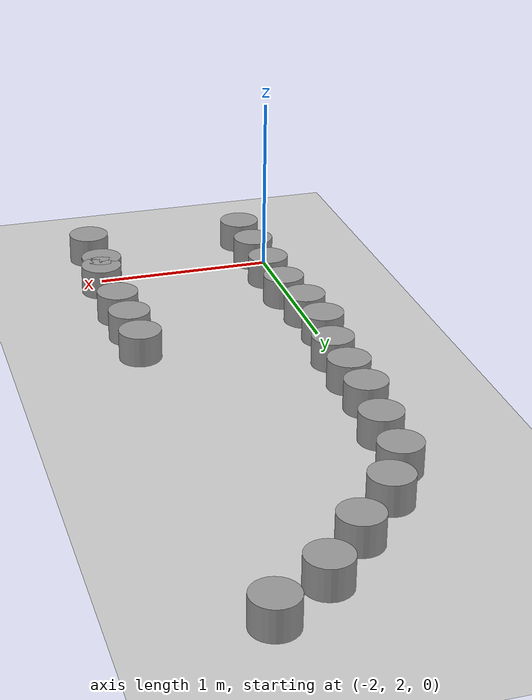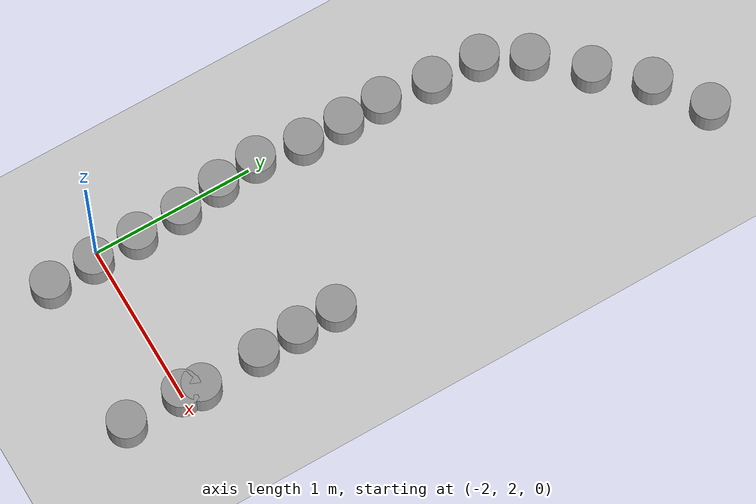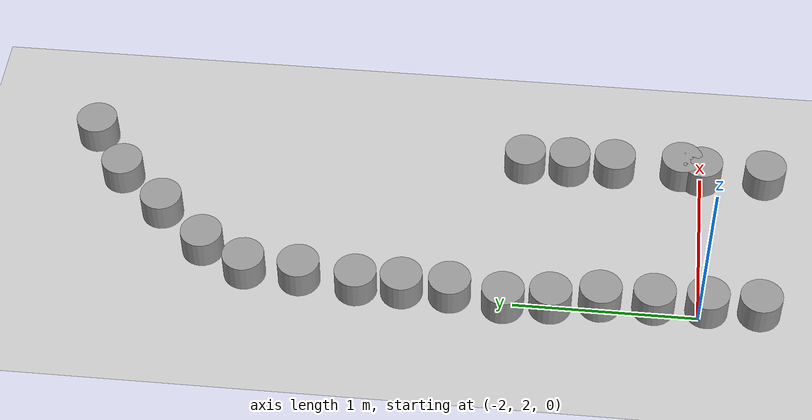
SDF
<sdf version="1.6">
 <world name="default">
  <model name="ground_plane">
   <static>1</static>
   <link name="link">
    <collision name="collision">
     <geometry><plane><normal>0 0 1</normal><size>100 100</size></plane></geometry>
     <surface>
      <contact><collide_bitmask>65535</collide_bitmask></contact>
      <friction><ode><mu>100</mu><mu2>50</mu2></ode></friction>
     </surface>
    </collision>
    <visual name="visual">
     <cast_shadows>0</cast_shadows>
     <geometry><plane><normal>0 0 1</normal><size>100 100</size></plane></geometry>
     <material>
      <script><uri>file://media/materials/scripts/gazebo.material</uri><name>Gazebo/Grey</name></script>
     </material>
    </visual>
   </link>
  </model>
  <model name="pillar">
   <link name="link_0">
    <inertial>
     <mass>0.0172437</mass>
     <inertia>
      <ixx>0.000207925</ixx>
      <ixy>0</ixy>
      <ixz>0</ixz>
      <iyy>0.000207925</iyy>
      <iyz>0</iyz>
      <izz>0.000114861</izz>
     </inertia>
    </inertial>
    <pose>2e-06 -0 0 0 -0 0</pose>
    <visual name="visual">
     <geometry><cylinder><radius>0.115422</radius><length>0.32362</length></cylinder></geometry>
     <material>
      <lighting>1</lighting>
      <script><uri>file://media/materials/scripts/gazebo.material</uri><name>Gazebo/Grey</name></script>
      <shader type="vertex"><normal_map>__default__</normal_map></shader>
     </material>
    </visual>
    <collision name="collision">
     <geometry><cylinder><radius>0.115422</radius><length>0.32362</length></cylinder></geometry>
     <surface>
      <friction>
       <ode><mu>1</mu><mu2>1</mu2><fdir1>0 0 0</fdir1><slip1>0</slip1><slip2>0</slip2></ode>
       <torsional>
        <coefficient>1</coefficient>
        <patch_radius>0</patch_radius>
        <surface_radius>0</surface_radius>
        <use_patch_radius>1</use_patch_radius>
        <ode><slip>0</slip></ode>
       </torsional>
      </friction>
      <bounce><restitution_coefficient>0</restitution_coefficient><threshold>1e+06</threshold></bounce>
      <contact>
       <collide_without_contact>0</collide_without_contact>
       <collide_without_contact_bitmask>1</collide_without_contact_bitmask>
       <collide_bitmask>1</collide_bitmask>
       <ode>
        <soft_cfm>0</soft_cfm>
        <soft_erp>0.2</soft_erp>
        <kp>1e+13</kp>
        <kd>1</kd>
        <max_vel>0.01</max_vel>
        <min_depth>0</min_depth>
       </ode>
       <bullet>
        <split_impulse>1</split_impulse>
        <split_impulse_penetration_threshold>-0.01</split_impulse_penetration_threshold>
        <soft_cfm>0</soft_cfm>
        <soft_erp>0.2</soft_erp>
        <kp>1e+13</kp>
        <kd>1</kd>
       </bullet>
      </contact>
     </surface>
    </collision>
   </link>
   <static>1</static>
   <pose>-2.01154 3.05582 0 0 -0 0</pose>
  </model>
  <model name="pillar_clone">
   <link name="link_0">
    <inertial>
     <mass>0.0172437</mass>
     <inertia>
      <ixx>0.000207925</ixx>
      <ixy>0</ixy>
      <ixz>0</ixz>
      <iyy>0.000207925</iyy>
      <iyz>0</iyz>
      <izz>0.000114861</izz>
     </inertia>
    </inertial>
    <pose>2e-06 -0 0 0 -0 0</pose>
    <visual name="visual">
     <geometry><cylinder><radius>0.115422</radius><length>0.32362</length></cylinder></geometry>
     <material>
      <lighting>1</lighting>
      <script><uri>file://media/materials/scripts/gazebo.material</uri><name>Gazebo/Grey</name></script>
      <shader type="vertex"><normal_map>__default__</normal_map></shader>
     </material>
    </visual>
    <collision name="collision">
     <geometry><cylinder><radius>0.115422</radius><length>0.32362</length></cylinder></geometry>
     <surface>
      <friction>
       <ode><mu>1</mu><mu2>1</mu2><fdir1>0 0 0</fdir1><slip1>0</slip1><slip2>0</slip2></ode>
       <torsional>
        <coefficient>1</coefficient>
        <patch_radius>0</patch_radius>
        <surface_radius>0</surface_radius>
        <use_patch_radius>1</use_patch_radius>
        <ode><slip>0</slip></ode>
       </torsional>
      </friction>
      <bounce><restitution_coefficient>0</restitution_coefficient><threshold>1e+06</threshold></bounce>
      <contact>
       <collide_without_contact>0</collide_without_contact>
       <collide_without_contact_bitmask>1</collide_without_contact_bitmask>
       <collide_bitmask>1</collide_bitmask>
       <ode>
        <soft_cfm>0</soft_cfm>
        <soft_erp>0.2</soft_erp>
        <kp>1e+13</kp>
        <kd>1</kd>
        <max_vel>0.01</max_vel>
        <min_depth>0</min_depth>
       </ode>
       <bullet>
        <split_impulse>1</split_impulse>
        <split_impulse_penetration_threshold>-0.01</split_impulse_penetration_threshold>
        <soft_cfm>0</soft_cfm>
        <soft_erp>0.2</soft_erp>
        <kp>1e+13</kp>
        <kd>1</kd>
       </bullet>
      </contact>
     </surface>
    </collision>
   </link>
   <static>1</static>
   <pose>-1.99112 2.80091 0 0 -0 0</pose>
  </model>
  <model name="pillar_clone_0">
   <link name="link_0">
    <inertial>
     <mass>0.0172437</mass>
     <inertia>
      <ixx>0.000207925</ixx>
      <ixy>0</ixy>
      <ixz>0</ixz>
      <iyy>0.000207925</iyy>
      <iyz>0</iyz>
      <izz>0.000114861</izz>
     </inertia>
    </inertial>
    <pose>2e-06 -0 0 0 -0 0</pose>
    <visual name="visual">
     <geometry><cylinder><radius>0.115422</radius><length>0.32362</length></cylinder></geometry>
     <material>
      <lighting>1</lighting>
      <script><uri>file://media/materials/scripts/gazebo.material</uri><name>Gazebo/Grey</name></script>
      <shader type="vertex"><normal_map>__default__</normal_map></shader>
     </material>
    </visual>
    <collision name="collision">
     <geometry><cylinder><radius>0.115422</radius><length>0.32362</length></cylinder></geometry>
     <surface>
      <friction>
       <ode><mu>1</mu><mu2>1</mu2><fdir1>0 0 0</fdir1><slip1>0</slip1><slip2>0</slip2></ode>
       <torsional>
        <coefficient>1</coefficient>
        <patch_radius>0</patch_radius>
        <surface_radius>0</surface_radius>
        <use_patch_radius>1</use_patch_radius>
        <ode><slip>0</slip></ode>
       </torsional>
      </friction>
      <bounce><restitution_coefficient>0</restitution_coefficient><threshold>1e+06</threshold></bounce>
      <contact>
       <collide_without_contact>0</collide_without_contact>
       <collide_without_contact_bitmask>1</collide_without_contact_bitmask>
       <collide_bitmask>1</collide_bitmask>
       <ode>
        <soft_cfm>0</soft_cfm>
        <soft_erp>0.2</soft_erp>
        <kp>1e+13</kp>
        <kd>1</kd>
        <max_vel>0.01</max_vel>
        <min_depth>0</min_depth>
       </ode>
       <bullet>
        <split_impulse>1</split_impulse>
        <split_impulse_penetration_threshold>-0.01</split_impulse_penetration_threshold>
        <soft_cfm>0</soft_cfm>
        <soft_erp>0.2</soft_erp>
        <kp>1e+13</kp>
        <kd>1</kd>
       </bullet>
      </contact>
     </surface>
    </collision>
   </link>
   <static>1</static>
   <pose>-1.95249 2.53371 0 0 -0 0</pose>
  </model>
  <model name="pillar_clone_1">
   <link name="link_0">
    <inertial>
     <mass>0.0172437</mass>
     <inertia>
      <ixx>0.000207925</ixx>
      <ixy>0</ixy>
      <ixz>0</ixz>
      <iyy>0.000207925</iyy>
      <iyz>0</iyz>
      <izz>0.000114861</izz>
     </inertia>
    </inertial>
    <pose>2e-06 -0 0 0 -0 0</pose>
    <visual name="visual">
     <geometry><cylinder><radius>0.115422</radius><length>0.32362</length></cylinder></geometry>
     <material>
      <lighting>1</lighting>
      <script><uri>file://media/materials/scripts/gazebo.material</uri><name>Gazebo/Grey</name></script>
      <shader type="vertex"><normal_map>__default__</normal_map></shader>
     </material>
    </visual>
    <collision name="collision">
     <geometry><cylinder><radius>0.115422</radius><length>0.32362</length></cylinder></geometry>
     <surface>
      <friction>
       <ode><mu>1</mu><mu2>1</mu2><fdir1>0 0 0</fdir1><slip1>0</slip1><slip2>0</slip2></ode>
       <torsional>
        <coefficient>1</coefficient>
        <patch_radius>0</patch_radius>
        <surface_radius>0</surface_radius>
        <use_patch_radius>1</use_patch_radius>
        <ode><slip>0</slip></ode>
       </torsional>
      </friction>
      <bounce><restitution_coefficient>0</restitution_coefficient><threshold>1e+06</threshold></bounce>
      <contact>
       <collide_without_contact>0</collide_without_contact>
       <collide_without_contact_bitmask>1</collide_without_contact_bitmask>
       <collide_bitmask>1</collide_bitmask>
       <ode>
        <soft_cfm>0</soft_cfm>
        <soft_erp>0.2</soft_erp>
        <kp>1e+13</kp>
        <kd>1</kd>
        <max_vel>0.01</max_vel>
        <min_depth>0</min_depth>
       </ode>
       <bullet>
        <split_impulse>1</split_impulse>
        <split_impulse_penetration_threshold>-0.01</split_impulse_penetration_threshold>
        <soft_cfm>0</soft_cfm>
        <soft_erp>0.2</soft_erp>
        <kp>1e+13</kp>
        <kd>1</kd>
       </bullet>
      </contact>
     </surface>
    </collision>
   </link>
   <static>1</static>
   <pose>-1.9471 2.24459 0 0 -0 0</pose>
  </model>
  <model name="pillar_clone_2">
   <link name="link_0">
    <inertial>
     <mass>0.0172437</mass>
     <inertia>
      <ixx>0.000207925</ixx>
      <ixy>0</ixy>
      <ixz>0</ixz>
      <iyy>0.000207925</iyy>
      <iyz>0</iyz>
      <izz>0.000114861</izz>
     </inertia>
    </inertial>
    <pose>2e-06 -0 0 0 -0 0</pose>
    <visual name="visual">
     <geometry><cylinder><radius>0.115422</radius><length>0.32362</length></cylinder></geometry>
     <material>
      <lighting>1</lighting>
      <script><uri>file://media/materials/scripts/gazebo.material</uri><name>Gazebo/Grey</name></script>
      <shader type="vertex"><normal_map>__default__</normal_map></shader>
     </material>
    </visual>
    <collision name="collision">
     <geometry><cylinder><radius>0.115422</radius><length>0.32362</length></cylinder></geometry>
     <surface>
      <friction>
       <ode><mu>1</mu><mu2>1</mu2><fdir1>0 0 0</fdir1><slip1>0</slip1><slip2>0</slip2></ode>
       <torsional>
        <coefficient>1</coefficient>
        <patch_radius>0</patch_radius>
        <surface_radius>0</surface_radius>
        <use_patch_radius>1</use_patch_radius>
        <ode><slip>0</slip></ode>
       </torsional>
      </friction>
      <bounce><restitution_coefficient>0</restitution_coefficient><threshold>1e+06</threshold></bounce>
      <contact>
       <collide_without_contact>0</collide_without_contact>
       <collide_without_contact_bitmask>1</collide_without_contact_bitmask>
       <collide_bitmask>1</collide_bitmask>
       <ode>
        <soft_cfm>0</soft_cfm>
        <soft_erp>0.2</soft_erp>
        <kp>1e+13</kp>
        <kd>1</kd>
        <max_vel>0.01</max_vel>
        <min_depth>0</min_depth>
       </ode>
       <bullet>
        <split_impulse>1</split_impulse>
        <split_impulse_penetration_threshold>-0.01</split_impulse_penetration_threshold>
        <soft_cfm>0</soft_cfm>
        <soft_erp>0.2</soft_erp>
        <kp>1e+13</kp>
        <kd>1</kd>
       </bullet>
      </contact>
     </surface>
    </collision>
   </link>
   <static>1</static>
   <pose>-1.94177 1.95842 0 0 -0 0</pose>
  </model>
  <model name="pillar_clone_3">
   <link name="link_0">
    <inertial>
     <mass>0.0172437</mass>
     <inertia>
      <ixx>0.000207925</ixx>
      <ixy>0</ixy>
      <ixz>0</ixz>
      <iyy>0.000207925</iyy>
      <iyz>0</iyz>
      <izz>0.000114861</izz>
     </inertia>
    </inertial>
    <pose>2e-06 -0 0 0 -0 0</pose>
    <visual name="visual">
     <geometry><cylinder><radius>0.115422</radius><length>0.32362</length></cylinder></geometry>
     <material>
      <lighting>1</lighting>
      <script><uri>file://media/materials/scripts/gazebo.material</uri><name>Gazebo/Grey</name></script>
      <shader type="vertex"><normal_map>__default__</normal_map></shader>
     </material>
    </visual>
    <collision name="collision">
     <geometry><cylinder><radius>0.115422</radius><length>0.32362</length></cylinder></geometry>
     <surface>
      <friction>
       <ode><mu>1</mu><mu2>1</mu2><fdir1>0 0 0</fdir1><slip1>0</slip1><slip2>0</slip2></ode>
       <torsional>
        <coefficient>1</coefficient>
        <patch_radius>0</patch_radius>
        <surface_radius>0</surface_radius>
        <use_patch_radius>1</use_patch_radius>
        <ode><slip>0</slip></ode>
       </torsional>
      </friction>
      <bounce><restitution_coefficient>0</restitution_coefficient><threshold>1e+06</threshold></bounce>
      <contact>
       <collide_without_contact>0</collide_without_contact>
       <collide_without_contact_bitmask>1</collide_without_contact_bitmask>
       <collide_bitmask>1</collide_bitmask>
       <ode>
        <soft_cfm>0</soft_cfm>
        <soft_erp>0.2</soft_erp>
        <kp>1e+13</kp>
        <kd>1</kd>
        <max_vel>0.01</max_vel>
        <min_depth>0</min_depth>
       </ode>
       <bullet>
        <split_impulse>1</split_impulse>
        <split_impulse_penetration_threshold>-0.01</split_impulse_penetration_threshold>
        <soft_cfm>0</soft_cfm>
        <soft_erp>0.2</soft_erp>
        <kp>1e+13</kp>
        <kd>1</kd>
       </bullet>
      </contact>
     </surface>
    </collision>
   </link>
   <static>1</static>
   <pose>-1.93622 1.67516 0 0 -0 0</pose>
  </model>
  <model name="pillar_clone_13">
   <link name="link_0">
    <inertial>
     <mass>0.0172437</mass>
     <inertia>
      <ixx>0.000207925</ixx>
      <ixy>0</ixy>
      <ixz>0</ixz>
      <iyy>0.000207925</iyy>
      <iyz>0</iyz>
      <izz>0.000114861</izz>
     </inertia>
    </inertial>
    <pose>2e-06 -0 0 0 -0 0</pose>
    <visual name="visual">
     <geometry><cylinder><radius>0.115422</radius><length>0.32362</length></cylinder></geometry>
     <material>
      <lighting>1</lighting>
      <script><uri>file://media/materials/scripts/gazebo.material</uri><name>Gazebo/Grey</name></script>
      <shader type="vertex"><normal_map>__default__</normal_map></shader>
     </material>
    </visual>
    <collision name="collision">
     <geometry><cylinder><radius>0.115422</radius><length>0.32362</length></cylinder></geometry>
     <surface>
      <friction>
       <ode><mu>1</mu><mu2>1</mu2><fdir1>0 0 0</fdir1><slip1>0</slip1><slip2>0</slip2></ode>
       <torsional>
        <coefficient>1</coefficient>
        <patch_radius>0</patch_radius>
        <surface_radius>0</surface_radius>
        <use_patch_radius>1</use_patch_radius>
        <ode><slip>0</slip></ode>
       </torsional>
      </friction>
      <bounce><restitution_coefficient>0</restitution_coefficient><threshold>1e+06</threshold></bounce>
      <contact>
       <collide_without_contact>0</collide_without_contact>
       <collide_without_contact_bitmask>1</collide_without_contact_bitmask>
       <collide_bitmask>1</collide_bitmask>
       <ode>
        <soft_cfm>0</soft_cfm>
        <soft_erp>0.2</soft_erp>
        <kp>1e+13</kp>
        <kd>1</kd>
        <max_vel>0.01</max_vel>
        <min_depth>0</min_depth>
       </ode>
       <bullet>
        <split_impulse>1</split_impulse>
        <split_impulse_penetration_threshold>-0.01</split_impulse_penetration_threshold>
        <soft_cfm>0</soft_cfm>
        <soft_erp>0.2</soft_erp>
        <kp>1e+13</kp>
        <kd>1</kd>
       </bullet>
      </contact>
     </surface>
    </collision>
   </link>
   <static>1</static>
   <pose>-1.96524 3.85851 0 0 -0 0</pose>
  </model>
  <model name="pillar_clone_14">
   <link name="link_0">
    <inertial>
     <mass>0.0172437</mass>
     <inertia>
      <ixx>0.000207925</ixx>
      <ixy>0</ixy>
      <ixz>0</ixz>
      <iyy>0.000207925</iyy>
      <iyz>0</iyz>
      <izz>0.000114861</izz>
     </inertia>
    </inertial>
    <pose>2e-06 -0 0 0 -0 0</pose>
    <visual name="visual">
     <geometry><cylinder><radius>0.115422</radius><length>0.32362</length></cylinder></geometry>
     <material>
      <lighting>1</lighting>
      <script><uri>file://media/materials/scripts/gazebo.material</uri><name>Gazebo/Grey</name></script>
      <shader type="vertex"><normal_map>__default__</normal_map></shader>
     </material>
    </visual>
    <collision name="collision">
     <geometry><cylinder><radius>0.115422</radius><length>0.32362</length></cylinder></geometry>
     <surface>
      <friction>
       <ode><mu>1</mu><mu2>1</mu2><fdir1>0 0 0</fdir1><slip1>0</slip1><slip2>0</slip2></ode>
       <torsional>
        <coefficient>1</coefficient>
        <patch_radius>0</patch_radius>
        <surface_radius>0</surface_radius>
        <use_patch_radius>1</use_patch_radius>
        <ode><slip>0</slip></ode>
       </torsional>
      </friction>
      <bounce><restitution_coefficient>0</restitution_coefficient><threshold>1e+06</threshold></bounce>
      <contact>
       <collide_without_contact>0</collide_without_contact>
       <collide_without_contact_bitmask>1</collide_without_contact_bitmask>
       <collide_bitmask>1</collide_bitmask>
       <ode>
        <soft_cfm>0</soft_cfm>
        <soft_erp>0.2</soft_erp>
        <kp>1e+13</kp>
        <kd>1</kd>
        <max_vel>0.01</max_vel>
        <min_depth>0</min_depth>
       </ode>
       <bullet>
        <split_impulse>1</split_impulse>
        <split_impulse_penetration_threshold>-0.01</split_impulse_penetration_threshold>
        <soft_cfm>0</soft_cfm>
        <soft_erp>0.2</soft_erp>
        <kp>1e+13</kp>
        <kd>1</kd>
       </bullet>
      </contact>
     </surface>
    </collision>
   </link>
   <static>1</static>
   <pose>-1.96342 3.6093 0 0 -0 0</pose>
  </model>
  <model name="pillar_clone_15">
   <link name="link_0">
    <inertial>
     <mass>0.0172437</mass>
     <inertia>
      <ixx>0.000207925</ixx>
      <ixy>0</ixy>
      <ixz>0</ixz>
      <iyy>0.000207925</iyy>
      <iyz>0</iyz>
      <izz>0.000114861</izz>
     </inertia>
    </inertial>
    <pose>2e-06 -0 0 0 -0 0</pose>
    <visual name="visual">
     <geometry><cylinder><radius>0.115422</radius><length>0.32362</length></cylinder></geometry>
     <material>
      <lighting>1</lighting>
      <script><uri>file://media/materials/scripts/gazebo.material</uri><name>Gazebo/Grey</name></script>
      <shader type="vertex"><normal_map>__default__</normal_map></shader>
     </material>
    </visual>
    <collision name="collision">
     <geometry><cylinder><radius>0.115422</radius><length>0.32362</length></cylinder></geometry>
     <surface>
      <friction>
       <ode><mu>1</mu><mu2>1</mu2><fdir1>0 0 0</fdir1><slip1>0</slip1><slip2>0</slip2></ode>
       <torsional>
        <coefficient>1</coefficient>
        <patch_radius>0</patch_radius>
        <surface_radius>0</surface_radius>
        <use_patch_radius>1</use_patch_radius>
        <ode><slip>0</slip></ode>
       </torsional>
      </friction>
      <bounce><restitution_coefficient>0</restitution_coefficient><threshold>1e+06</threshold></bounce>
      <contact>
       <collide_without_contact>0</collide_without_contact>
       <collide_without_contact_bitmask>1</collide_without_contact_bitmask>
       <collide_bitmask>1</collide_bitmask>
       <ode>
        <soft_cfm>0</soft_cfm>
        <soft_erp>0.2</soft_erp>
        <kp>1e+13</kp>
        <kd>1</kd>
        <max_vel>0.01</max_vel>
        <min_depth>0</min_depth>
       </ode>
       <bullet>
        <split_impulse>1</split_impulse>
        <split_impulse_penetration_threshold>-0.01</split_impulse_penetration_threshold>
        <soft_cfm>0</soft_cfm>
        <soft_erp>0.2</soft_erp>
        <kp>1e+13</kp>
        <kd>1</kd>
       </bullet>
      </contact>
     </surface>
    </collision>
   </link>
   <static>1</static>
   <pose>-1.96782 3.34684 0 0 -0 0</pose>
  </model>
  <model name="pillar_clone_36_clone_13">
   <link name="link_0">
    <inertial>
     <mass>0.0172437</mass>
     <inertia>
      <ixx>0.000207925</ixx>
      <ixy>0</ixy>
      <ixz>0</ixz>
      <iyy>0.000207925</iyy>
      <iyz>0</iyz>
      <izz>0.000114861</izz>
     </inertia>
    </inertial>
    <pose>2e-06 -0 0 0 -0 0</pose>
    <visual name="visual">
     <geometry><cylinder><radius>0.115422</radius><length>0.32362</length></cylinder></geometry>
     <material>
      <lighting>1</lighting>
      <script><uri>file://media/materials/scripts/gazebo.material</uri><name>Gazebo/Grey</name></script>
      <shader type="vertex"><normal_map>__default__</normal_map></shader>
     </material>
    </visual>
    <collision name="collision">
     <geometry><cylinder><radius>0.115422</radius><length>0.32362</length></cylinder></geometry>
     <surface>
      <friction>
       <ode><mu>1</mu><mu2>1</mu2><fdir1>0 0 0</fdir1><slip1>0</slip1><slip2>0</slip2></ode>
       <torsional>
        <coefficient>1</coefficient>
        <patch_radius>0</patch_radius>
        <surface_radius>0</surface_radius>
        <use_patch_radius>1</use_patch_radius>
        <ode><slip>0</slip></ode>
       </torsional>
      </friction>
      <bounce><restitution_coefficient>0</restitution_coefficient><threshold>1e+06</threshold></bounce>
      <contact>
       <collide_without_contact>0</collide_without_contact>
       <collide_without_contact_bitmask>1</collide_without_contact_bitmask>
       <collide_bitmask>1</collide_bitmask>
       <ode>
        <soft_cfm>0</soft_cfm>
        <soft_erp>0.2</soft_erp>
        <kp>1e+13</kp>
        <kd>1</kd>
        <max_vel>0.01</max_vel>
        <min_depth>0</min_depth>
       </ode>
       <bullet>
        <split_impulse>1</split_impulse>
        <split_impulse_penetration_threshold>-0.01</split_impulse_penetration_threshold>
        <soft_cfm>0</soft_cfm>
        <soft_erp>0.2</soft_erp>
        <kp>1e+13</kp>
        <kd>1</kd>
       </bullet>
      </contact>
     </surface>
    </collision>
   </link>
   <static>1</static>
   <pose>-1.92624 4.17436 0 0 -0 0</pose>
  </model>
  <model name="pillar_clone_36_clone_14">
   <link name="link_0">
    <inertial>
     <mass>0.0172437</mass>
     <inertia>
      <ixx>0.000207925</ixx>
      <ixy>0</ixy>
      <ixz>0</ixz>
      <iyy>0.000207925</iyy>
      <iyz>0</iyz>
      <izz>0.000114861</izz>
     </inertia>
    </inertial>
    <pose>2e-06 -0 0 0 -0 0</pose>
    <visual name="visual">
     <geometry><cylinder><radius>0.115422</radius><length>0.32362</length></cylinder></geometry>
     <material>
      <lighting>1</lighting>
      <script><uri>file://media/materials/scripts/gazebo.material</uri><name>Gazebo/Grey</name></script>
      <shader type="vertex"><normal_map>__default__</normal_map></shader>
     </material>
    </visual>
    <collision name="collision">
     <geometry><cylinder><radius>0.115422</radius><length>0.32362</length></cylinder></geometry>
     <surface>
      <friction>
       <ode><mu>1</mu><mu2>1</mu2><fdir1>0 0 0</fdir1><slip1>0</slip1><slip2>0</slip2></ode>
       <torsional>
        <coefficient>1</coefficient>
        <patch_radius>0</patch_radius>
        <surface_radius>0</surface_radius>
        <use_patch_radius>1</use_patch_radius>
        <ode><slip>0</slip></ode>
       </torsional>
      </friction>
      <bounce><restitution_coefficient>0</restitution_coefficient><threshold>1e+06</threshold></bounce>
      <contact>
       <collide_without_contact>0</collide_without_contact>
       <collide_without_contact_bitmask>1</collide_without_contact_bitmask>
       <collide_bitmask>1</collide_bitmask>
       <ode>
        <soft_cfm>0</soft_cfm>
        <soft_erp>0.2</soft_erp>
        <kp>1e+13</kp>
        <kd>1</kd>
        <max_vel>0.01</max_vel>
        <min_depth>0</min_depth>
       </ode>
       <bullet>
        <split_impulse>1</split_impulse>
        <split_impulse_penetration_threshold>-0.01</split_impulse_penetration_threshold>
        <soft_cfm>0</soft_cfm>
        <soft_erp>0.2</soft_erp>
        <kp>1e+13</kp>
        <kd>1</kd>
       </bullet>
      </contact>
     </surface>
    </collision>
   </link>
   <static>1</static>
   <pose>-1.90785 4.4788 0 0 -0 0</pose>
  </model>
  <model name="pillar_clone_36_clone_15">
   <link name="link_0">
    <inertial>
     <mass>0.0172437</mass>
     <inertia>
      <ixx>0.000207925</ixx>
      <ixy>0</ixy>
      <ixz>0</ixz>
      <iyy>0.000207925</iyy>
      <iyz>0</iyz>
      <izz>0.000114861</izz>
     </inertia>
    </inertial>
    <pose>2e-06 -0 0 0 -0 0</pose>
    <visual name="visual">
     <geometry><cylinder><radius>0.115422</radius><length>0.32362</length></cylinder></geometry>
     <material>
      <lighting>1</lighting>
      <script><uri>file://media/materials/scripts/gazebo.material</uri><name>Gazebo/Grey</name></script>
      <shader type="vertex"><normal_map>__default__</normal_map></shader>
     </material>
    </visual>
    <collision name="collision">
     <geometry><cylinder><radius>0.115422</radius><length>0.32362</length></cylinder></geometry>
     <surface>
      <friction>
       <ode><mu>1</mu><mu2>1</mu2><fdir1>0 0 0</fdir1><slip1>0</slip1><slip2>0</slip2></ode>
       <torsional>
        <coefficient>1</coefficient>
        <patch_radius>0</patch_radius>
        <surface_radius>0</surface_radius>
        <use_patch_radius>1</use_patch_radius>
        <ode><slip>0</slip></ode>
       </torsional>
      </friction>
      <bounce><restitution_coefficient>0</restitution_coefficient><threshold>1e+06</threshold></bounce>
      <contact>
       <collide_without_contact>0</collide_without_contact>
       <collide_without_contact_bitmask>1</collide_without_contact_bitmask>
       <collide_bitmask>1</collide_bitmask>
       <ode>
        <soft_cfm>0</soft_cfm>
        <soft_erp>0.2</soft_erp>
        <kp>1e+13</kp>
        <kd>1</kd>
        <max_vel>0.01</max_vel>
        <min_depth>0</min_depth>
       </ode>
       <bullet>
        <split_impulse>1</split_impulse>
        <split_impulse_penetration_threshold>-0.01</split_impulse_penetration_threshold>
        <soft_cfm>0</soft_cfm>
        <soft_erp>0.2</soft_erp>
        <kp>1e+13</kp>
        <kd>1</kd>
       </bullet>
      </contact>
     </surface>
    </collision>
   </link>
   <static>1</static>
   <pose>-1.52119 5 0 0 -0 0</pose>
  </model>
  <model name="pillar_clone_36_clone_16">
   <link name="link_0">
    <inertial>
     <mass>0.0172437</mass>
     <inertia>
      <ixx>0.000207925</ixx>
      <ixy>0</ixy>
      <ixz>0</ixz>
      <iyy>0.000207925</iyy>
      <iyz>0</iyz>
      <izz>0.000114861</izz>
     </inertia>
    </inertial>
    <pose>2e-06 -0 0 0 -0 0</pose>
    <visual name="visual">
     <geometry><cylinder><radius>0.115422</radius><length>0.32362</length></cylinder></geometry>
     <material>
      <lighting>1</lighting>
      <script><uri>file://media/materials/scripts/gazebo.material</uri><name>Gazebo/Grey</name></script>
      <shader type="vertex"><normal_map>__default__</normal_map></shader>
     </material>
    </visual>
    <collision name="collision">
     <geometry><cylinder><radius>0.115422</radius><length>0.32362</length></cylinder></geometry>
     <surface>
      <friction>
       <ode><mu>1</mu><mu2>1</mu2><fdir1>0 0 0</fdir1><slip1>0</slip1><slip2>0</slip2></ode>
       <torsional>
        <coefficient>1</coefficient>
        <patch_radius>0</patch_radius>
        <surface_radius>0</surface_radius>
        <use_patch_radius>1</use_patch_radius>
        <ode><slip>0</slip></ode>
       </torsional>
      </friction>
      <bounce><restitution_coefficient>0</restitution_coefficient><threshold>1e+06</threshold></bounce>
      <contact>
       <collide_without_contact>0</collide_without_contact>
       <collide_without_contact_bitmask>1</collide_without_contact_bitmask>
       <collide_bitmask>1</collide_bitmask>
       <ode>
        <soft_cfm>0</soft_cfm>
        <soft_erp>0.2</soft_erp>
        <kp>1e+13</kp>
        <kd>1</kd>
        <max_vel>0.01</max_vel>
        <min_depth>0</min_depth>
       </ode>
       <bullet>
        <split_impulse>1</split_impulse>
        <split_impulse_penetration_threshold>-0.01</split_impulse_penetration_threshold>
        <soft_cfm>0</soft_cfm>
        <soft_erp>0.2</soft_erp>
        <kp>1e+13</kp>
        <kd>1</kd>
       </bullet>
      </contact>
     </surface>
    </collision>
   </link>
   <static>1</static>
   <pose>-1.28242 5.26483 0 0 -0 0</pose>
  </model>
  <model name="pillar_clone_36_clone_17">
   <link name="link_0">
    <inertial>
     <mass>0.0172437</mass>
     <inertia>
      <ixx>0.000207925</ixx>
      <ixy>0</ixy>
      <ixz>0</ixz>
      <iyy>0.000207925</iyy>
      <iyz>0</iyz>
      <izz>0.000114861</izz>
     </inertia>
    </inertial>
    <pose>2e-06 -0 0 0 -0 0</pose>
    <visual name="visual">
     <geometry><cylinder><radius>0.115422</radius><length>0.32362</length></cylinder></geometry>
     <material>
      <lighting>1</lighting>
      <script><uri>file://media/materials/scripts/gazebo.material</uri><name>Gazebo/Grey</name></script>
      <shader type="vertex"><normal_map>__default__</normal_map></shader>
     </material>
    </visual>
    <collision name="collision">
     <geometry><cylinder><radius>0.115422</radius><length>0.32362</length></cylinder></geometry>
     <surface>
      <friction>
       <ode><mu>1</mu><mu2>1</mu2><fdir1>0 0 0</fdir1><slip1>0</slip1><slip2>0</slip2></ode>
       <torsional>
        <coefficient>1</coefficient>
        <patch_radius>0</patch_radius>
        <surface_radius>0</surface_radius>
        <use_patch_radius>1</use_patch_radius>
        <ode><slip>0</slip></ode>
       </torsional>
      </friction>
      <bounce><restitution_coefficient>0</restitution_coefficient><threshold>1e+06</threshold></bounce>
      <contact>
       <collide_without_contact>0</collide_without_contact>
       <collide_without_contact_bitmask>1</collide_without_contact_bitmask>
       <collide_bitmask>1</collide_bitmask>
       <ode>
        <soft_cfm>0</soft_cfm>
        <soft_erp>0.2</soft_erp>
        <kp>1e+13</kp>
        <kd>1</kd>
        <max_vel>0.01</max_vel>
        <min_depth>0</min_depth>
       </ode>
       <bullet>
        <split_impulse>1</split_impulse>
        <split_impulse_penetration_threshold>-0.01</split_impulse_penetration_threshold>
        <soft_cfm>0</soft_cfm>
        <soft_erp>0.2</soft_erp>
        <kp>1e+13</kp>
        <kd>1</kd>
       </bullet>
      </contact>
     </surface>
    </collision>
   </link>
   <static>1</static>
   <pose>-1.76495 4.73224 0 0 -0 0</pose>
  </model>
  <model name="pillar_clone_36_clone_21">
   <link name="link_0">
    <inertial>
     <mass>0.0172437</mass>
     <inertia>
      <ixx>0.000207925</ixx>
      <ixy>0</ixy>
      <ixz>0</ixz>
      <iyy>0.000207925</iyy>
      <iyz>0</iyz>
      <izz>0.000114861</izz>
     </inertia>
    </inertial>
    <pose>2e-06 -0 0 0 -0 0</pose>
    <visual name="visual">
     <geometry><cylinder><radius>0.115422</radius><length>0.32362</length></cylinder></geometry>
     <material>
      <lighting>1</lighting>
      <script><uri>file://media/materials/scripts/gazebo.material</uri><name>Gazebo/Grey</name></script>
      <shader type="vertex"><normal_map>__default__</normal_map></shader>
     </material>
    </visual>
    <collision name="collision">
     <geometry><cylinder><radius>0.115422</radius><length>0.32362</length></cylinder></geometry>
     <surface>
      <friction>
       <ode><mu>1</mu><mu2>1</mu2><fdir1>0 0 0</fdir1><slip1>0</slip1><slip2>0</slip2></ode>
       <torsional>
        <coefficient>1</coefficient>
        <patch_radius>0</patch_radius>
        <surface_radius>0</surface_radius>
        <use_patch_radius>1</use_patch_radius>
        <ode><slip>0</slip></ode>
       </torsional>
      </friction>
      <bounce><restitution_coefficient>0</restitution_coefficient><threshold>1e+06</threshold></bounce>
      <contact>
       <collide_without_contact>0</collide_without_contact>
       <collide_without_contact_bitmask>1</collide_without_contact_bitmask>
       <collide_bitmask>1</collide_bitmask>
       <ode>
        <soft_cfm>0</soft_cfm>
        <soft_erp>0.2</soft_erp>
        <kp>1e+13</kp>
        <kd>1</kd>
        <max_vel>0.01</max_vel>
        <min_depth>0</min_depth>
       </ode>
       <bullet>
        <split_impulse>1</split_impulse>
        <split_impulse_penetration_threshold>-0.01</split_impulse_penetration_threshold>
        <soft_cfm>0</soft_cfm>
        <soft_erp>0.2</soft_erp>
        <kp>1e+13</kp>
        <kd>1</kd>
       </bullet>
      </contact>
     </surface>
    </collision>
   </link>
   <static>1</static>
   <pose>-0.981742 5.46708 0 0 -0 0</pose>
  </model>
  <model name="pillar_clone_36_clone_53">
   <link name="link_0">
    <inertial>
     <mass>0.0172437</mass>
     <inertia>
      <ixx>0.000207925</ixx>
      <ixy>0</ixy>
      <ixz>0</ixz>
      <iyy>0.000207925</iyy>
      <iyz>0</iyz>
      <izz>0.000114861</izz>
     </inertia>
    </inertial>
    <pose>2e-06 -0 0 0 -0 0</pose>
    <visual name="visual">
     <geometry><cylinder><radius>0.115422</radius><length>0.32362</length></cylinder></geometry>
     <material>
      <lighting>1</lighting>
      <script><uri>file://media/materials/scripts/gazebo.material</uri><name>Gazebo/Grey</name></script>
      <shader type="vertex"><normal_map>__default__</normal_map></shader>
     </material>
    </visual>
    <collision name="collision">
     <geometry><cylinder><radius>0.115422</radius><length>0.32362</length></cylinder></geometry>
     <surface>
      <friction>
       <ode><mu>1</mu><mu2>1</mu2><fdir1>0 0 0</fdir1><slip1>0</slip1><slip2>0</slip2></ode>
       <torsional>
        <coefficient>1</coefficient>
        <patch_radius>0</patch_radius>
        <surface_radius>0</surface_radius>
        <use_patch_radius>1</use_patch_radius>
        <ode><slip>0</slip></ode>
       </torsional>
      </friction>
      <bounce><restitution_coefficient>0</restitution_coefficient><threshold>1e+06</threshold></bounce>
      <contact>
       <collide_without_contact>0</collide_without_contact>
       <collide_without_contact_bitmask>1</collide_without_contact_bitmask>
       <collide_bitmask>1</collide_bitmask>
       <ode>
        <soft_cfm>0</soft_cfm>
        <soft_erp>0.2</soft_erp>
        <kp>1e+13</kp>
        <kd>1</kd>
        <max_vel>0.01</max_vel>
        <min_depth>0</min_depth>
       </ode>
       <bullet>
        <split_impulse>1</split_impulse>
        <split_impulse_penetration_threshold>-0.01</split_impulse_penetration_threshold>
        <soft_cfm>0</soft_cfm>
        <soft_erp>0.2</soft_erp>
        <kp>1e+13</kp>
        <kd>1</kd>
       </bullet>
      </contact>
     </surface>
    </collision>
   </link>
   <static>1</static>
   <pose>-1 3 0 0 -0 0</pose>
  </model>
  <model name="pillar_clone_36_clone_55">
   <link name="link_0">
    <inertial>
     <mass>0.0172437</mass>
     <inertia>
      <ixx>0.000207925</ixx>
      <ixy>0</ixy>
      <ixz>0</ixz>
      <iyy>0.000207925</iyy>
      <iyz>0</iyz>
      <izz>0.000114861</izz>
     </inertia>
    </inertial>
    <pose>2e-06 -0 0 0 -0 0</pose>
    <visual name="visual">
     <geometry><cylinder><radius>0.115422</radius><length>0.32362</length></cylinder></geometry>
     <material>
      <lighting>1</lighting>
      <script><uri>file://media/materials/scripts/gazebo.material</uri><name>Gazebo/Grey</name></script>
      <shader type="vertex"><normal_map>__default__</normal_map></shader>
     </material>
    </visual>
    <collision name="collision">
     <geometry><cylinder><radius>0.115422</radius><length>0.32362</length></cylinder></geometry>
     <surface>
      <friction>
       <ode><mu>1</mu><mu2>1</mu2><fdir1>0 0 0</fdir1><slip1>0</slip1><slip2>0</slip2></ode>
       <torsional>
        <coefficient>1</coefficient>
        <patch_radius>0</patch_radius>
        <surface_radius>0</surface_radius>
        <use_patch_radius>1</use_patch_radius>
        <ode><slip>0</slip></ode>
       </torsional>
      </friction>
      <bounce><restitution_coefficient>0</restitution_coefficient><threshold>1e+06</threshold></bounce>
      <contact>
       <collide_without_contact>0</collide_without_contact>
       <collide_without_contact_bitmask>1</collide_without_contact_bitmask>
       <collide_bitmask>1</collide_bitmask>
       <ode>
        <soft_cfm>0</soft_cfm>
        <soft_erp>0.2</soft_erp>
        <kp>1e+13</kp>
        <kd>1</kd>
        <max_vel>0.01</max_vel>
        <min_depth>0</min_depth>
       </ode>
       <bullet>
        <split_impulse>1</split_impulse>
        <split_impulse_penetration_threshold>-0.01</split_impulse_penetration_threshold>
        <soft_cfm>0</soft_cfm>
        <soft_erp>0.2</soft_erp>
        <kp>1e+13</kp>
        <kd>1</kd>
       </bullet>
      </contact>
     </surface>
    </collision>
   </link>
   <static>1</static>
   <pose>-0.997794 2.74741 0 0 -0 0</pose>
  </model>
  <model name="pillar_clone_36_clone_56">
   <link name="link_0">
    <inertial>
     <mass>0.0172437</mass>
     <inertia>
      <ixx>0.000207925</ixx>
      <ixy>0</ixy>
      <ixz>0</ixz>
      <iyy>0.000207925</iyy>
      <iyz>0</iyz>
      <izz>0.000114861</izz>
     </inertia>
    </inertial>
    <pose>2e-06 -0 0 0 -0 0</pose>
    <visual name="visual">
     <geometry><cylinder><radius>0.115422</radius><length>0.32362</length></cylinder></geometry>
     <material>
      <lighting>1</lighting>
      <script><uri>file://media/materials/scripts/gazebo.material</uri><name>Gazebo/Grey</name></script>
      <shader type="vertex"><normal_map>__default__</normal_map></shader>
     </material>
    </visual>
    <collision name="collision">
     <geometry><cylinder><radius>0.115422</radius><length>0.32362</length></cylinder></geometry>
     <surface>
      <friction>
       <ode><mu>1</mu><mu2>1</mu2><fdir1>0 0 0</fdir1><slip1>0</slip1><slip2>0</slip2></ode>
       <torsional>
        <coefficient>1</coefficient>
        <patch_radius>0</patch_radius>
        <surface_radius>0</surface_radius>
        <use_patch_radius>1</use_patch_radius>
        <ode><slip>0</slip></ode>
       </torsional>
      </friction>
      <bounce><restitution_coefficient>0</restitution_coefficient><threshold>1e+06</threshold></bounce>
      <contact>
       <collide_without_contact>0</collide_without_contact>
       <collide_without_contact_bitmask>1</collide_without_contact_bitmask>
       <collide_bitmask>1</collide_bitmask>
       <ode>
        <soft_cfm>0</soft_cfm>
        <soft_erp>0.2</soft_erp>
        <kp>1e+13</kp>
        <kd>1</kd>
        <max_vel>0.01</max_vel>
        <min_depth>0</min_depth>
       </ode>
       <bullet>
        <split_impulse>1</split_impulse>
        <split_impulse_penetration_threshold>-0.01</split_impulse_penetration_threshold>
        <soft_cfm>0</soft_cfm>
        <soft_erp>0.2</soft_erp>
        <kp>1e+13</kp>
        <kd>1</kd>
       </bullet>
      </contact>
     </surface>
    </collision>
   </link>
   <static>1</static>
   <pose>-0.988532 2.49153 0 0 -0 0</pose>
  </model>
  <model name="pillar_clone_36_clone_57">
   <link name="link_0">
    <inertial>
     <mass>0.0172437</mass>
     <inertia>
      <ixx>0.000207925</ixx>
      <ixy>0</ixy>
      <ixz>0</ixz>
      <iyy>0.000207925</iyy>
      <iyz>0</iyz>
      <izz>0.000114861</izz>
     </inertia>
    </inertial>
    <pose>2e-06 -0 0 0 -0 0</pose>
    <visual name="visual">
     <geometry><cylinder><radius>0.115422</radius><length>0.32362</length></cylinder></geometry>
     <material>
      <lighting>1</lighting>
      <script><uri>file://media/materials/scripts/gazebo.material</uri><name>Gazebo/Grey</name></script>
      <shader type="vertex"><normal_map>__default__</normal_map></shader>
     </material>
    </visual>
    <collision name="collision">
     <geometry><cylinder><radius>0.115422</radius><length>0.32362</length></cylinder></geometry>
     <surface>
      <friction>
       <ode><mu>1</mu><mu2>1</mu2><fdir1>0 0 0</fdir1><slip1>0</slip1><slip2>0</slip2></ode>
       <torsional>
        <coefficient>1</coefficient>
        <patch_radius>0</patch_radius>
        <surface_radius>0</surface_radius>
        <use_patch_radius>1</use_patch_radius>
        <ode><slip>0</slip></ode>
       </torsional>
      </friction>
      <bounce><restitution_coefficient>0</restitution_coefficient><threshold>1e+06</threshold></bounce>
      <contact>
       <collide_without_contact>0</collide_without_contact>
       <collide_without_contact_bitmask>1</collide_without_contact_bitmask>
       <collide_bitmask>1</collide_bitmask>
       <ode>
        <soft_cfm>0</soft_cfm>
        <soft_erp>0.2</soft_erp>
        <kp>1e+13</kp>
        <kd>1</kd>
        <max_vel>0.01</max_vel>
        <min_depth>0</min_depth>
       </ode>
       <bullet>
        <split_impulse>1</split_impulse>
        <split_impulse_penetration_threshold>-0.01</split_impulse_penetration_threshold>
        <soft_cfm>0</soft_cfm>
        <soft_erp>0.2</soft_erp>
        <kp>1e+13</kp>
        <kd>1</kd>
       </bullet>
      </contact>
     </surface>
    </collision>
   </link>
   <static>1</static>
   <pose>-0.97528 2.11368 0 0 -0 0</pose>
  </model>
  <model name="pillar_clone_36_clone_58">
   <link name="link_0">
    <inertial>
     <mass>0.0172437</mass>
     <inertia>
      <ixx>0.000207925</ixx>
      <ixy>0</ixy>
      <ixz>0</ixz>
      <iyy>0.000207925</iyy>
      <iyz>0</iyz>
      <izz>0.000114861</izz>
     </inertia>
    </inertial>
    <pose>2e-06 -0 0 0 -0 0</pose>
    <visual name="visual">
     <geometry><cylinder><radius>0.115422</radius><length>0.32362</length></cylinder></geometry>
     <material>
      <lighting>1</lighting>
      <script><uri>file://media/materials/scripts/gazebo.material</uri><name>Gazebo/Grey</name></script>
      <shader type="vertex"><normal_map>__default__</normal_map></shader>
     </material>
    </visual>
    <collision name="collision">
     <geometry><cylinder><radius>0.115422</radius><length>0.32362</length></cylinder></geometry>
     <surface>
      <friction>
       <ode><mu>1</mu><mu2>1</mu2><fdir1>0 0 0</fdir1><slip1>0</slip1><slip2>0</slip2></ode>
       <torsional>
        <coefficient>1</coefficient>
        <patch_radius>0</patch_radius>
        <surface_radius>0</surface_radius>
        <use_patch_radius>1</use_patch_radius>
        <ode><slip>0</slip></ode>
       </torsional>
      </friction>
      <bounce><restitution_coefficient>0</restitution_coefficient><threshold>1e+06</threshold></bounce>
      <contact>
       <collide_without_contact>0</collide_without_contact>
       <collide_without_contact_bitmask>1</collide_without_contact_bitmask>
       <collide_bitmask>1</collide_bitmask>
       <ode>
        <soft_cfm>0</soft_cfm>
        <soft_erp>0.2</soft_erp>
        <kp>1e+13</kp>
        <kd>1</kd>
        <max_vel>0.01</max_vel>
        <min_depth>0</min_depth>
       </ode>
       <bullet>
        <split_impulse>1</split_impulse>
        <split_impulse_penetration_threshold>-0.01</split_impulse_penetration_threshold>
        <soft_cfm>0</soft_cfm>
        <soft_erp>0.2</soft_erp>
        <kp>1e+13</kp>
        <kd>1</kd>
       </bullet>
      </contact>
     </surface>
    </collision>
   </link>
   <static>1</static>
   <pose>-1 2 0 0 -0 0</pose>
  </model>
  <model name="pillar_clone_36_clone_59">
   <link name="link_0">
    <inertial>
     <mass>0.0172437</mass>
     <inertia>
      <ixx>0.000207925</ixx>
      <ixy>0</ixy>
      <ixz>0</ixz>
      <iyy>0.000207925</iyy>
      <iyz>0</iyz>
      <izz>0.000114861</izz>
     </inertia>
    </inertial>
    <pose>2e-06 -0 0 0 -0 0</pose>
    <visual name="visual">
     <geometry><cylinder><radius>0.115422</radius><length>0.32362</length></cylinder></geometry>
     <material>
      <lighting>1</lighting>
      <script><uri>file://media/materials/scripts/gazebo.material</uri><name>Gazebo/Grey</name></script>
      <shader type="vertex"><normal_map>__default__</normal_map></shader>
     </material>
    </visual>
    <collision name="collision">
     <geometry><cylinder><radius>0.115422</radius><length>0.32362</length></cylinder></geometry>
     <surface>
      <friction>
       <ode><mu>1</mu><mu2>1</mu2><fdir1>0 0 0</fdir1><slip1>0</slip1><slip2>0</slip2></ode>
       <torsional>
        <coefficient>1</coefficient>
        <patch_radius>0</patch_radius>
        <surface_radius>0</surface_radius>
        <use_patch_radius>1</use_patch_radius>
        <ode><slip>0</slip></ode>
       </torsional>
      </friction>
      <bounce><restitution_coefficient>0</restitution_coefficient><threshold>1e+06</threshold></bounce>
      <contact>
       <collide_without_contact>0</collide_without_contact>
       <collide_without_contact_bitmask>1</collide_without_contact_bitmask>
       <collide_bitmask>1</collide_bitmask>
       <ode>
        <soft_cfm>0</soft_cfm>
        <soft_erp>0.2</soft_erp>
        <kp>1e+13</kp>
        <kd>1</kd>
        <max_vel>0.01</max_vel>
        <min_depth>0</min_depth>
       </ode>
       <bullet>
        <split_impulse>1</split_impulse>
        <split_impulse_penetration_threshold>-0.01</split_impulse_penetration_threshold>
        <soft_cfm>0</soft_cfm>
        <soft_erp>0.2</soft_erp>
        <kp>1e+13</kp>
        <kd>1</kd>
       </bullet>
      </contact>
     </surface>
    </collision>
   </link>
   <static>1</static>
   <pose>-0.996228 1.64331 0 0 -0 0</pose>
  </model>
 </world>
</sdf>
